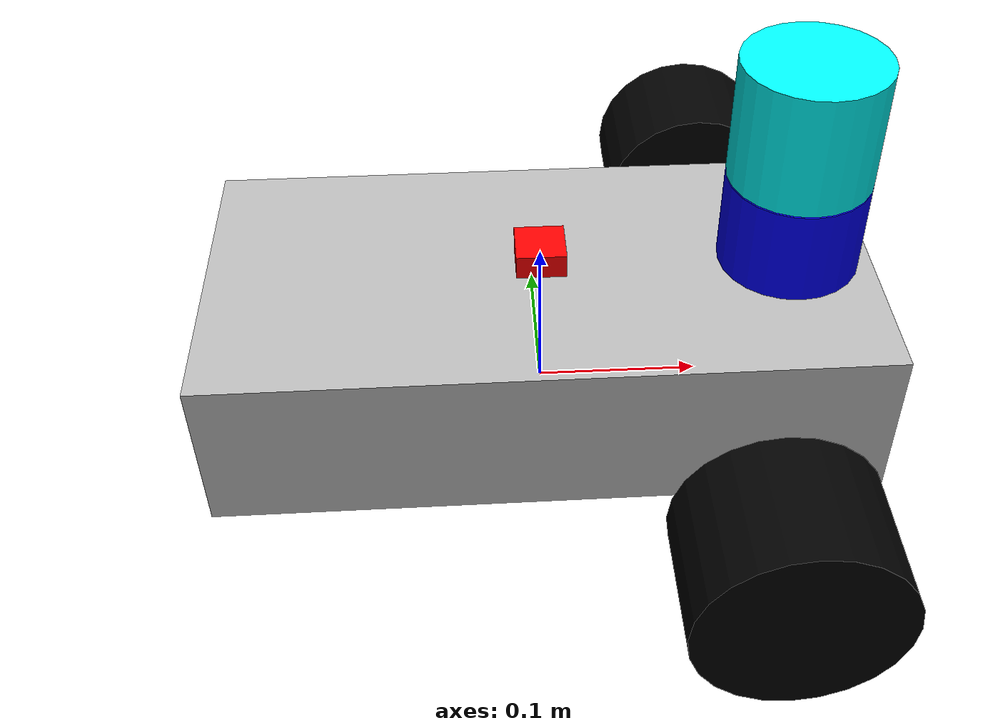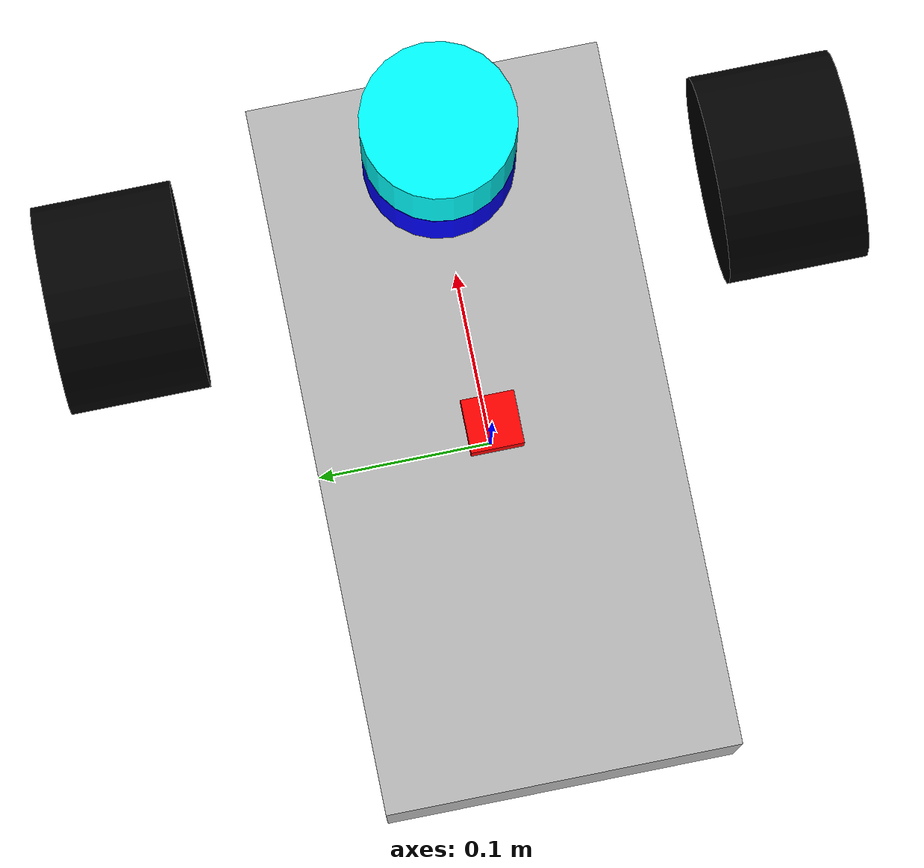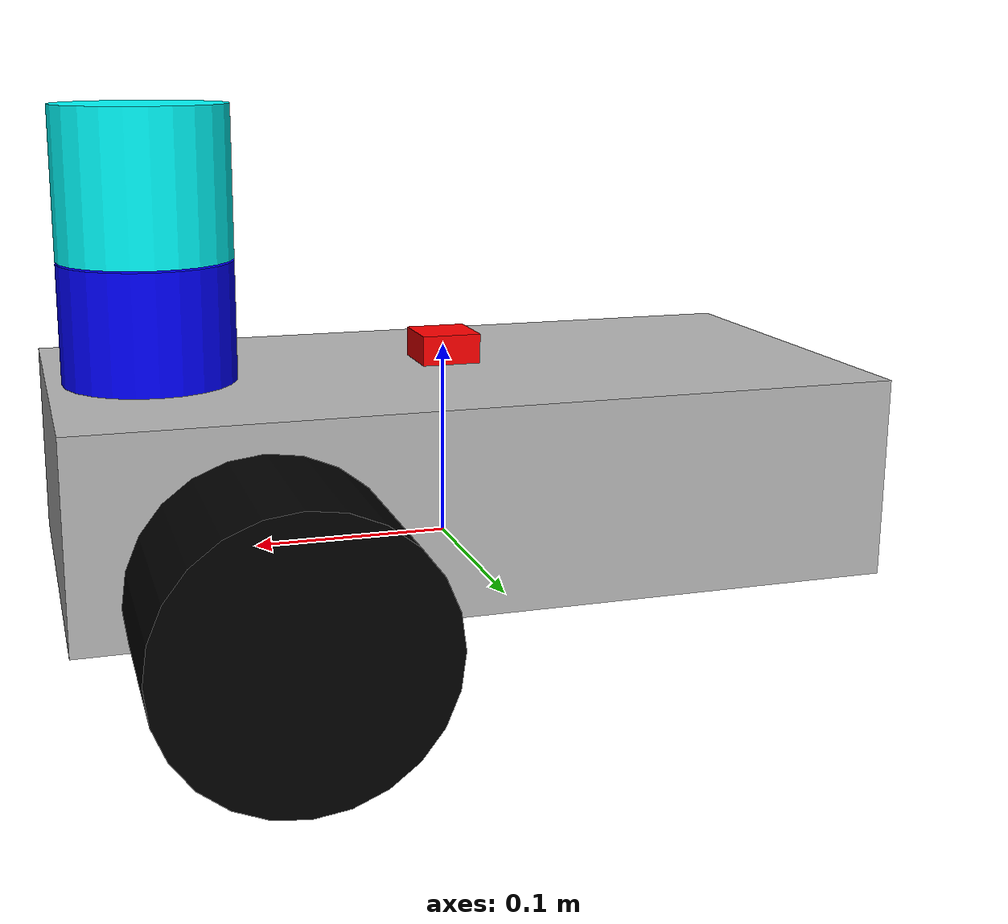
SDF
<!-- Reference : How to Simulate a Robot Using Gazebo and ROS 2 (https://automaticaddison.com/how-to-simulate-a-robot-using-gazebo-and-ros-2/#Launch_Your_Robot_and_Warehouse_Using_ROS_2) -->

<sdf version='1.5'>
    <model name='2WD_agent'>

        <!-- Define the model as a moving object -->
        <static>false</static>

        <!-- Rectangular base of the robot -->
        <link name='base_link'>

            <!-- Position of the center will be: -->

            <!-- Orientation of the center will be: -->
            <!-- Roll = 0 rad | Pitch = 0 rad | Yaw = 0 rad -->
            <pose>0 0 0.04 0 0 0</pose>

            <inertial>
                <mass>100.0</mass>
                <pose>0.0 0 0.1 0 0 0</pose>
                <inertia>
                    <ixx>0.5</ixx>
                    <iyy>1.0</iyy>
                    <izz>0.1</izz>
                </inertia>
            </inertial>

            <!-- [Base of 2WD Vehicle] -->
            <!-- Define the shape of collision area of base -->
            <collision name='collision'>
                <geometry>
                    <box>
                        <!-- Box-shaped collision area with 0.4m in length, 0.2m in width, and 0.1m in height -->
                        <size>0.4 0.2 0.1</size>
                    </box>
                </geometry>
            </collision>

            <!-- Define the visual representation of the base -->
            <visual name='visual'>
                <geometry>
                    <box>
                        <!-- Define visual shape of the base as box with same collision area -->
                        <size>0.4 0.2 0.1</size>
                    </box>
                </geometry>
            </visual>

            <!-- [Front Caster Wheel] -->
            <!-- Define the shape of collision area of caster wheel -->
            <collision name='caster_collision'>
                <pose>-0.1 0 -0.04 0 0 0</pose>
                <geometry>
                    <sphere>
                        <radius>0.03</radius>
                    </sphere>
                </geometry>

                <!-- Assign friction property to the wheel -->
                <surface>
                    <friction>
                        <ode>
                            <!-- Coefficients for friction -->
                            <mu>0</mu>
                            <mu2>0</mu2>
                            <!-- Force dependent slip -->
                            <slip1>1.0</slip1>
                            <slip2>1.0</slip2>
                        </ode>
                    </friction>
                </surface>
            </collision>

            <!-- Define visual shape of the caster wheel -->
            <visual name='caster_visual'>
                <pose>-0.1 0 -0.04 0 0 0</pose>
                <geometry>
                    <sphere>
                        <radius>0.03</radius>
                    </sphere>
                </geometry>
            </visual>
        </link>

        <!-- [Left Wheel] -->
        <link name='left_wheel'>
            <pose>0.12 0.19 0.03 0 1.5707 1.5707</pose>

            <collision name='collision'>
                <geometry>
                    <cylinder>
                        <radius>0.06</radius>
                        <length>0.08</length>
                    </cylinder>
                </geometry>
            </collision>

            <visual name='visual'>
                <geometry>
                    <cylinder>
                        <radius>0.06</radius>
                        <length>0.08</length>
                    </cylinder>
                </geometry>
                <material>
                    <ambient>0 0 0 1</ambient>
                </material>
            </visual>
        </link>

        <!-- [Left Wheel Motor/Joint] -->
        <joint type='revolute' name='left_wheel_hinge'>
            <pose>0 0 -0.03 0 0 0</pose>
            <parent>base_link</parent>
            <child>left_wheel</child>
            <axis>
                <xyz>0 0 1</xyz>
            </axis>
        </joint>

        <!-- [Right Wheel] -->
        <link name='right_wheel'>
            <pose>0.12 -0.19 0.03 0 1.5707 1.5707</pose>

            <collision name='collision'>
                <geometry>
                    <cylinder>
                        <radius>0.06</radius>
                        <length>0.08</length>
                    </cylinder>
                </geometry>
            </collision>

            <visual name='visual'>
                <geometry>
                    <cylinder>
                        <radius>0.06</radius>
                        <length>0.08</length>
                    </cylinder>
                </geometry>
                <material>
                    <ambient>0 0 0 1</ambient>
                </material>
            </visual>
        </link>

        <!-- [Right Wheel Motor/Joint] -->
        <joint type='revolute' name='right_wheel_hinge'>
            <pose>0 0 0.03 0 0 0</pose>
            <parent>base_link</parent>
            <child>right_wheel</child>
            <axis>
                <xyz>0 0 1</xyz>
            </axis>
        </joint>

        <!-- [LiDAR Sensor | Velodyne HDL 32] -->
        <link name='lidar_base'>

            <!-- Assign inertial property of LiDAR -->
            <inertial>
                <!-- Mass of LiDAR sensor in kg -->
                <mass>1.2</mass>
                <inertia>
                    <ixx>0.001087473</ixx>
                    <iyy>0.001087473</iyy>
                    <izz>0.001092437</izz>
                    <ixy>0</ixy>
                    <ixz>0</ixz>
                    <iyz>0</iyz>
                </inertia>
            </inertial>

            <!-- Position is towards the front of the robot -->
            <!-- LiDAR is mounted on the top -->
            <pose>0.15 0 0.12 0 0 0</pose>

            <collision name='base_collision'>
                <geometry>
                    <cylinder>
                        <!-- Radius and Length provided by Velodyne -->
                        <radius>0.04267</radius>
                        <length>0.05867</length>
                    </cylinder>
                </geometry>
            </collision>

            <visual name='base_visual'>
                <geometry>
                    <cylinder>
                        <!-- Radius and Length provided by Velodyne -->
                        <radius>0.04267</radius>
                        <length>0.05867</length>
                    </cylinder>
                </geometry>
                <material>
                    <ambient>0 0 1 1</ambient>
                </material>
            </visual>

        </link>

        <link name='lidar_top'>

            <!-- Assign inertial property of LiDAR -->
            <inertial>
                <!-- Mass of LiDAR sensor in kg -->
                <mass>0.1</mass>
                <inertia>
                    <ixx>0.000090623</ixx>
                    <iyy>0.000090623</iyy>
                    <izz>0.000091036</izz>
                    <ixy>0</ixy>
                    <ixz>0</ixz>
                    <iyz>0</iyz>
                </inertia>
            </inertial>

            <!-- Position is towards the front of the robot -->
            <!-- LiDAR is mounted on the top -->
            <pose>0.15 0 0.187 0 0 0</pose>

            <collision name='top_collision'>
                <geometry>
                    <cylinder>
                        <!-- Radius and Length provided by Velodyne -->
                        <radius>0.04267</radius>
                        <length>0.07357</length>
                    </cylinder>
                </geometry>
            </collision>

            <visual name='top_visual'>
                <geometry>
                    <cylinder>
                        <!-- Radius and Length provided by Velodyne -->
                        <radius>0.04267</radius>
                        <length>0.07357</length>
                    </cylinder>
                </geometry>
                <material>
                    <ambient>0 1 1 1</ambient>
                </material>
            </visual>

            <sensor type="gpu_ray" name="head_hokuyo_sensor">
                <pose>0 0 0.0175 0 0 0</pose>
                <visualize>true</visualize>
                <update_rate>40</update_rate>
                <ray>
                    <scan>
                        <horizontal>
                            <samples>720</samples>
                            <resolution>1</resolution>
                            <min_angle>-1.570796</min_angle>
                            <max_angle>1.570796</max_angle>
                        </horizontal>
                    </scan>
                    <range>
                        <min>0.10</min>
                        <max>30.0</max>
                        <resolution>0.01</resolution>
                    </range>
                    <noise>
                        <type>gaussian</type>
                        <mean>0.0</mean>
                        <stddev>0.01</stddev>
                    </noise>
                </ray>
                <plugin name="gazebo_ros_head_hokuyo_controller" filename="libgazebo_ros_gpu_laser.so">
                    <topicName>/scan</topicName>
                    <frameName>lidar_top</frameName>
                </plugin>
            </sensor>
        </link>

        <link name='imu_link'>
            <pose>0 0 0.1 0 0 0</pose>
            <inertial>
                <mass>0.001</mass>
                <inertia>
                    <ixx>0.00001</ixx>
                    <iyy>0.00001</iyy>
                    <izz>0.000001</izz>
                    <ixy>0</ixy>
                    <ixz>0</ixz>
                    <iyz>0</iyz>
                </inertia>
            </inertial>

            <visual name='imu_visual'>
                <geometry>
                    <box>
                        <size>0.03 0.03 0.015</size>
                    </box>
                </geometry>

                <material>
                    <diffuse>1 0 0 1</diffuse>
                </material>
            </visual>

            <gravity>true</gravity>
            <sensor name="imu_sensor" type="imu">
                <always_on>true</always_on>
                <update_rate>100</update_rate>
                <visualize>true</visualize>
                <topic>__default_topic__</topic>
                <plugin filename="libgazebo_ros_imu_sensor.so" name="imu_plugin">
                    <topicName>imu</topicName>
                    <bodyName>imu_link</bodyName>
                    <updateRateHZ>10.0</updateRateHZ>
                    <gaussianNoise>0.0</gaussianNoise>
                    <xyzOffset>0 0 0</xyzOffset>
                    <rpyOffset>0 0 0</rpyOffset>
                    <frameName>imu_link</frameName>
                    <initialOrientationAsReference>false</initialOrientationAsReference>
                </plugin>
                <pose>0 0 0 0 0 0</pose>
            </sensor>
        </link>

        <joint type='fixed' name='lidar_joint'>
            <pose>0 0 -0.035 0 0 0</pose>
            <parent>lidar_base</parent>
            <child>lidar_top</child>
            <axis>
                <xyz>0 0 1</xyz>
            </axis>
        </joint>

        <joint type='fixed' name='imu_joint'>
            <pose>0 0 0 0 0 0</pose>
            <parent>base_link</parent>
            <child>imu_link</child>
            <axis>
                <xyz>0 0 1</xyz>
            </axis>
        </joint>

        <joint type='fixed' name='lidar_base_joint'>
            <parent>base_link</parent>
            <child>lidar_base</child>
        </joint>

        <!-- ROS1 plugin for 2WD differential drive joint control -->
        <plugin name='differential_drive_controller' filename='libgazebo_ros_diff_drive.so'>

            <updateRate>100</updateRate>

            <!-- Wheels -->
            <leftJoint>left_wheel_hinge</leftJoint>       <!-- Name of joint / motor for left wheel -->
            <rightJoint>right_wheel_hinge</rightJoint>    <!-- Name of joint / motor for right wheel -->

            <!-- Kinematics -->
            <wheelSeparation>0.26</wheelSeparation>   <!-- Distance between the center of one wheel to the other [m] -->
            <wheelDiameter>0.2</wheelDiameter>        <!-- Diameter of wheels -->

            <!-- ROS1 Topic Output Setting -->
            <commandTopic>cmd_vel</commandTopic>
            <odometryTopic>odom</odometryTopic>

            <odometrySource>1</odometrySource>

            <!-- ROS1 Message Output Setting -->
            <publishOdom>true</publishOdom>               <!-- Decide whether to publish odometry topic -->
            <publishWheelTF>true</publishWheelTF>       <!-- Decide whether to publish wheel tf -->
            <publishWheelJointState>true</publishWheelJointState>

            <!-- Frame -->
            <odometryFrame>odom</odometryFrame>               <!-- Odometry frame name -->
            <robotBaseFrame>base_link</robotBaseFrame>        <!-- Model base link frame name -->
        </plugin>

    </model>
</sdf>
